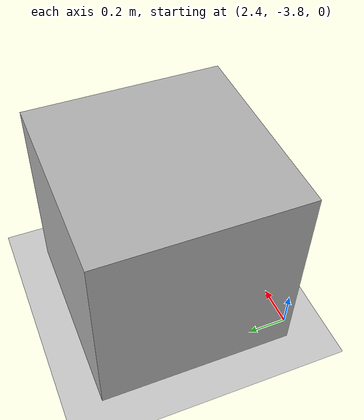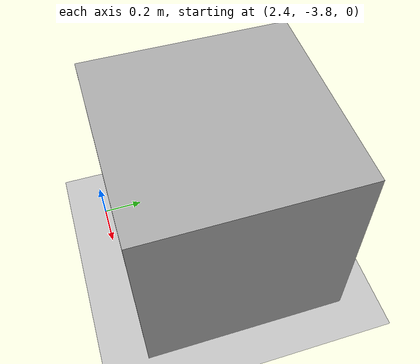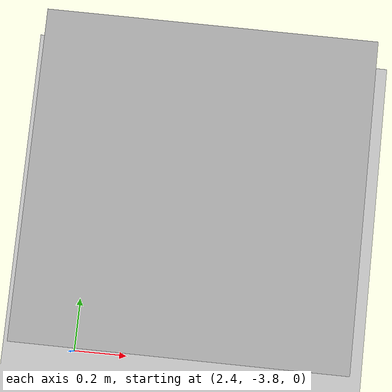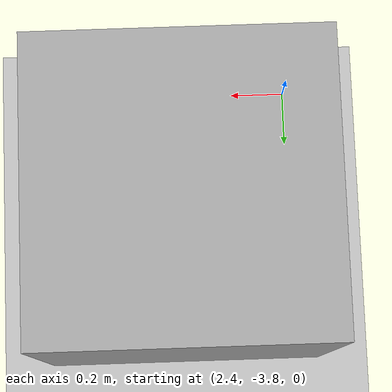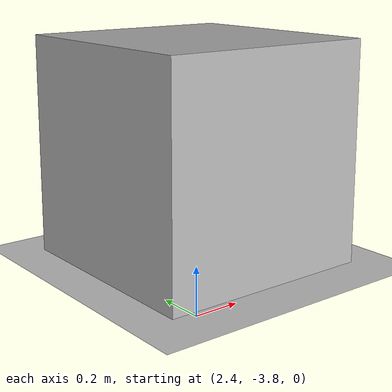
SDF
<?xml version="1.0" ?>
<sdf version="1.10">
  <world name="default">
    <physics name="8ms" type="ode">
      <max_step_size>0.008</max_step_size>
      <real_time_factor>1</real_time_factor>
      <real_time_update_rate>125</real_time_update_rate>
    </physics>
    <plugin name="gz::sim::systems::Physics" filename="gz-sim-physics-system"/>
    <plugin name="gz::sim::systems::UserCommands" filename="gz-sim-user-commands-system"/>
    <plugin name="gz::sim::systems::SceneBroadcaster" filename="gz-sim-scene-broadcaster-system"/>
    <plugin name="gz::sim::systems::Contact" filename="gz-sim-contact-system"/>
    <plugin name="gz::sim::systems::Sensors" filename="gz-sim-sensors-system">
      <render_engine>ogre2</render_engine>
    </plugin>
    <plugin name="gz::sim::systems::Imu" filename="gz-sim-imu-system"/>
    <plugin filename="gz-sim-navsat-system" name="gz::sim::systems::NavSat"/>

    <spherical_coordinates>
      <surface_model>EARTH_WGS84</surface_model>
      <world_frame_orientation>ENU</world_frame_orientation>
      <latitude_deg>0</latitude_deg>
      <longitude_deg>0</longitude_deg>
      <elevation>0</elevation>
      <heading_deg>0</heading_deg>
    </spherical_coordinates>

    <gravity>0 0 -9.8</gravity>
    <magnetic_field>5.5645e-06 2.28758e-05 -4.23884e-05</magnetic_field>
    <atmosphere type="adiabatic"/>
    <scene>
      <ambient>0.4 0.4 0.4 1</ambient>
      <background>0.7 0.7 0.7 1</background>
      <shadows>true</shadows>
    </scene>

    <model name="ground_plane">
      <static>true</static>
      <link name="link">
        <collision name="collision">
          <geometry>
            <plane>
              <normal>0 0 1</normal>
              <size>100 100</size>
            </plane>
          </geometry>
          <surface>
            <friction>
              <ode>
                <mu>50</mu>
              </ode>
            </friction>
          </surface>
          <max_contacts>10</max_contacts>
        </collision>
        <visual name="visual">
          <cast_shadows>false</cast_shadows>
          <geometry>
            <plane>
              <normal>0 0 1</normal>
              <size>100 100</size>
            </plane>
          </geometry>
          <material>
            <script>
              <uri>file://media/materials/scripts/gazebo.material</uri>
              <name>Gazebo/Grey</name>
            </script>
          </material>
        </visual>
        <self_collide>false</self_collide>
        <enable_wind>false</enable_wind>
        <kinematic>false</kinematic>
        <pose>0 0 0 0 0 0</pose>
        <inertial>
          <pose>0 0 0 0 0 0</pose>
          <mass>1</mass>
          <inertia>
            <ixx>1</ixx>
            <ixy>0</ixy>
            <ixz>0</ixz>
            <iyy>1</iyy>
            <iyz>0</iyz>
            <izz>1</izz>
          </inertia>
        </inertial>
      </link>
      <pose>0 0 0 0 0 0</pose>
      <self_collide>false</self_collide>
    </model>

    <model name='box'>
      <pose>2.810827256172697 -3.2680709802662204 0.49999999372787457 3.9864153056827992e-20 5.9698986531016748e-20 -2.3241941548364888e-20</pose>
      <link name='box_link'>
        <inertial>
          <inertia>
            <ixx>0.16666</ixx>
            <ixy>0</ixy>
            <ixz>0</ixz>
            <iyy>0.16666</iyy>
            <iyz>0</iyz>
            <izz>0.16666</izz>
          </inertia>
          <mass>1</mass>
          <pose>0 0 0 0 0 0</pose>
        </inertial>
        <collision name='box_collision'>
          <geometry>
            <box>
              <size>1 1 1</size>
            </box>
          </geometry>
          <surface>
            <friction>
              <ode/>
            </friction>
            <bounce/>
            <contact/>
          </surface>
        </collision>
        <visual name='box_visual'>
          <geometry>
            <box>
              <size>1 1 1</size>
            </box>
          </geometry>
          <material>
            <ambient>0.300000012 0.300000012 0.300000012 1</ambient>
            <diffuse>0.699999988 0.699999988 0.699999988 1</diffuse>
            <specular>1 1 1 1</specular>
          </material>
        </visual>
        <pose>0 0 0 0 0 0</pose>
        <enable_wind>false</enable_wind>
      </link>
      <static>false</static>
      <self_collide>false</self_collide>
    </model>

    <light name="sun" type="directional">
      <pose>0 0 10 0 0 0</pose>
      <cast_shadows>true</cast_shadows>
      <intensity>1</intensity>
      <direction>-0.5 0.1 -0.9</direction>
      <diffuse>0.8 0.8 0.8 1</diffuse>
      <specular>0.2 0.2 0.2 1</specular>
      <attenuation>
        <range>1000</range>
        <linear>0.01</linear>
        <constant>0.9</constant>
        <quadratic>0.001</quadratic>
      </attenuation>
      <spot>
        <inner_angle>0</inner_angle>
        <outer_angle>0</outer_angle>
        <falloff>0</falloff>
      </spot>
    </light>
  </world>
</sdf>
